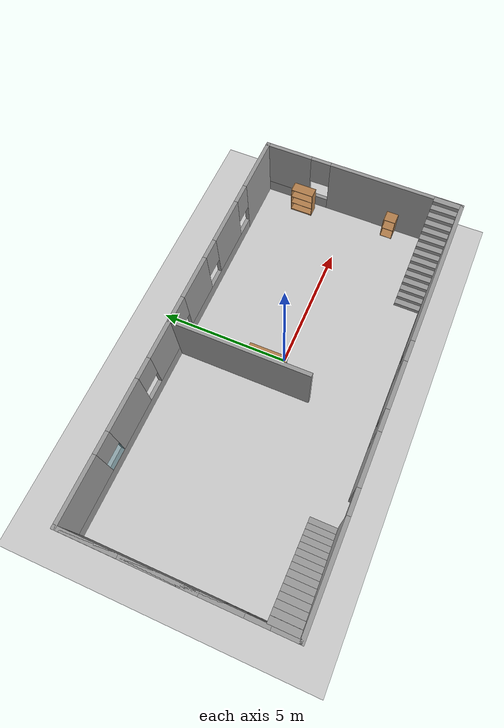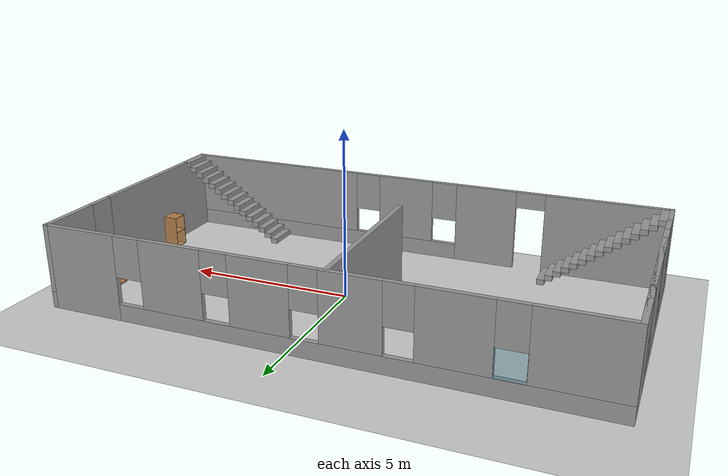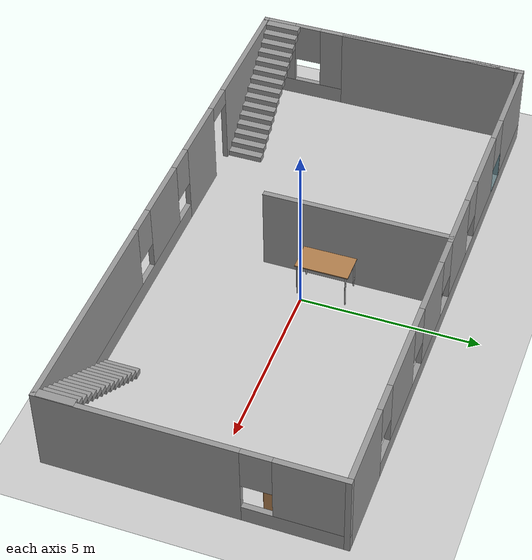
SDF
<sdf version="1.6">
 <world name="default">
  <light name="sun" type="directional">
   <pose>0 0 10 0 -0 0</pose>
   <diffuse>0.8 0.8 0.8 1</diffuse>
   <specular>0.2 0.2 0.2 1</specular>
   <attenuation>
    <range>1000</range>
    <constant>0.9</constant>
    <linear>0.01</linear>
    <quadratic>0.001</quadratic>
   </attenuation>
   <direction>-0.5 0.1 -0.9</direction>
  </light>
  <model name="ground_plane">
   <static>1</static>
   <link name="link">
    <collision name="collision">
     <geometry><plane><normal>0 0 1</normal><size>100 100</size></plane></geometry>
     <surface><friction><ode><mu>100</mu><mu2>50</mu2></ode></friction></surface>
    </collision>
    <visual name="visual">
     <cast_shadows>0</cast_shadows>
     <geometry><plane><normal>0 0 1</normal><size>100 100</size></plane></geometry>
     <material>
      <script><uri>file://media/materials/scripts/gazebo.material</uri><name>Gazebo/Grey</name></script>
     </material>
    </visual>
   </link>
  </model>
  <gravity>0 0 -9.8</gravity>
  <magnetic_field>6e-06 2.3e-05 -4.2e-05</magnetic_field>
  <atmosphere type="adiabatic"/>
  <physics name="default_physics" default="0" type="ode">
   <max_step_size>0.01</max_step_size>
   <real_time_factor>1</real_time_factor>
   <real_time_update_rate>100</real_time_update_rate>
  </physics>
  <scene><ambient>0.4 0.4 0.4 1</ambient><background>0.7 0.7 0.7 1</background><shadows>1</shadows></scene>
  <audio><device>default</device></audio>
  <spherical_coordinates>
   <surface_model>EARTH_WGS84</surface_model>
   <latitude_deg>0</latitude_deg>
   <longitude_deg>0</longitude_deg>
   <elevation>0</elevation>
   <heading_deg>0</heading_deg>
  </spherical_coordinates>
  <model name="Office">
   <pose>-0.605768 -0.165332 0 0 -0 0</pose>
   <link name="Stairs_0">
    <visual name="Stairs_0_Visual_0">
     <pose>-4.48748 -3.33801 0.083333 0 -0 -1.5708</pose>
     <geometry><box><size>1 0.233333 0.166667</size></box></geometry>
     <material>
      <script><uri>file://media/materials/scripts/gazebo.material</uri><name>Gazebo/Grey</name></script>
      <ambient>1 1 1 1</ambient>
     </material>
     <meta><layer>0</layer></meta>
    </visual>
    <collision name="Stairs_0_Collision_0">
     <geometry><box><size>1 0.233333 0.166667</size></box></geometry>
     <pose>-4.48748 -3.33801 0.083333 0 -0 -1.5708</pose>
    </collision>
    <visual name="Stairs_0_Visual_1">
     <pose>-4.72081 -3.33801 0.25 0 -0 -1.5708</pose>
     <geometry><box><size>1 0.233333 0.166667</size></box></geometry>
     <material>
      <script><uri>file://media/materials/scripts/gazebo.material</uri><name>Gazebo/Grey</name></script>
      <ambient>1 1 1 1</ambient>
     </material>
     <meta><layer>0</layer></meta>
    </visual>
    <collision name="Stairs_0_Collision_1">
     <geometry><box><size>1 0.233333 0.166667</size></box></geometry>
     <pose>-4.72081 -3.33801 0.25 0 -0 -1.5708</pose>
    </collision>
    <visual name="Stairs_0_Visual_2">
     <pose>-4.95415 -3.33801 0.416667 0 -0 -1.5708</pose>
     <geometry><box><size>1 0.233333 0.166667</size></box></geometry>
     <material>
      <script><uri>file://media/materials/scripts/gazebo.material</uri><name>Gazebo/Grey</name></script>
      <ambient>1 1 1 1</ambient>
     </material>
     <meta><layer>0</layer></meta>
    </visual>
    <collision name="Stairs_0_Collision_2">
     <geometry><box><size>1 0.233333 0.166667</size></box></geometry>
     <pose>-4.95415 -3.33801 0.416667 0 -0 -1.5708</pose>
    </collision>
    <visual name="Stairs_0_Visual_3">
     <pose>-5.18748 -3.33801 0.583333 0 -0 -1.5708</pose>
     <geometry><box><size>1 0.233333 0.166667</size></box></geometry>
     <material>
      <script><uri>file://media/materials/scripts/gazebo.material</uri><name>Gazebo/Grey</name></script>
      <ambient>1 1 1 1</ambient>
     </material>
     <meta><layer>0</layer></meta>
    </visual>
    <collision name="Stairs_0_Collision_3">
     <geometry><box><size>1 0.233333 0.166667</size></box></geometry>
     <pose>-5.18748 -3.33801 0.583333 0 -0 -1.5708</pose>
    </collision>
    <visual name="Stairs_0_Visual_4">
     <pose>-5.42081 -3.33801 0.75 0 -0 -1.5708</pose>
     <geometry><box><size>1 0.233333 0.166667</size></box></geometry>
     <material>
      <script><uri>file://media/materials/scripts/gazebo.material</uri><name>Gazebo/Grey</name></script>
      <ambient>1 1 1 1</ambient>
     </material>
     <meta><layer>0</layer></meta>
    </visual>
    <collision name="Stairs_0_Collision_4">
     <geometry><box><size>1 0.233333 0.166667</size></box></geometry>
     <pose>-5.42081 -3.33801 0.75 0 -0 -1.5708</pose>
    </collision>
    <visual name="Stairs_0_Visual_5">
     <pose>-5.65415 -3.33801 0.916667 0 -0 -1.5708</pose>
     <geometry><box><size>1 0.233333 0.166667</size></box></geometry>
     <material>
      <script><uri>file://media/materials/scripts/gazebo.material</uri><name>Gazebo/Grey</name></script>
      <ambient>1 1 1 1</ambient>
     </material>
     <meta><layer>0</layer></meta>
    </visual>
    <collision name="Stairs_0_Collision_5">
     <geometry><box><size>1 0.233333 0.166667</size></box></geometry>
     <pose>-5.65415 -3.33801 0.916667 0 -0 -1.5708</pose>
    </collision>
    <visual name="Stairs_0_Visual_6">
     <pose>-5.88748 -3.33801 1.08333 0 -0 -1.5708</pose>
     <geometry><box><size>1 0.233333 0.166667</size></box></geometry>
     <material>
      <script><uri>file://media/materials/scripts/gazebo.material</uri><name>Gazebo/Grey</name></script>
      <ambient>1 1 1 1</ambient>
     </material>
     <meta><layer>0</layer></meta>
    </visual>
    <collision name="Stairs_0_Collision_6">
     <geometry><box><size>1 0.233333 0.166667</size></box></geometry>
     <pose>-5.88748 -3.33801 1.08333 0 -0 -1.5708</pose>
    </collision>
    <visual name="Stairs_0_Visual_7">
     <pose>-6.12081 -3.33801 1.25 0 -0 -1.5708</pose>
     <geometry><box><size>1 0.233333 0.166667</size></box></geometry>
     <material>
      <script><uri>file://media/materials/scripts/gazebo.material</uri><name>Gazebo/Grey</name></script>
      <ambient>1 1 1 1</ambient>
     </material>
     <meta><layer>0</layer></meta>
    </visual>
    <collision name="Stairs_0_Collision_7">
     <geometry><box><size>1 0.233333 0.166667</size></box></geometry>
     <pose>-6.12081 -3.33801 1.25 0 -0 -1.5708</pose>
    </collision>
    <visual name="Stairs_0_Visual_8">
     <pose>-6.35415 -3.33801 1.41667 0 -0 -1.5708</pose>
     <geometry><box><size>1 0.233333 0.166667</size></box></geometry>
     <material>
      <script><uri>file://media/materials/scripts/gazebo.material</uri><name>Gazebo/Grey</name></script>
      <ambient>1 1 1 1</ambient>
     </material>
     <meta><layer>0</layer></meta>
    </visual>
    <collision name="Stairs_0_Collision_8">
     <geometry><box><size>1 0.233333 0.166667</size></box></geometry>
     <pose>-6.35415 -3.33801 1.41667 0 -0 -1.5708</pose>
    </collision>
    <visual name="Stairs_0_Visual_9">
     <pose>-6.58748 -3.33801 1.58333 0 -0 -1.5708</pose>
     <geometry><box><size>1 0.233333 0.166667</size></box></geometry>
     <material>
      <script><uri>file://media/materials/scripts/gazebo.material</uri><name>Gazebo/Grey</name></script>
      <ambient>1 1 1 1</ambient>
     </material>
     <meta><layer>0</layer></meta>
    </visual>
    <collision name="Stairs_0_Collision_9">
     <geometry><box><size>1 0.233333 0.166667</size></box></geometry>
     <pose>-6.58748 -3.33801 1.58333 0 -0 -1.5708</pose>
    </collision>
    <visual name="Stairs_0_Visual_10">
     <pose>-6.82081 -3.33801 1.75 0 -0 -1.5708</pose>
     <geometry><box><size>1 0.233333 0.166667</size></box></geometry>
     <material>
      <script><uri>file://media/materials/scripts/gazebo.material</uri><name>Gazebo/Grey</name></script>
      <ambient>1 1 1 1</ambient>
     </material>
     <meta><layer>0</layer></meta>
    </visual>
    <collision name="Stairs_0_Collision_10">
     <geometry><box><size>1 0.233333 0.166667</size></box></geometry>
     <pose>-6.82081 -3.33801 1.75 0 -0 -1.5708</pose>
    </collision>
    <visual name="Stairs_0_Visual_11">
     <pose>-7.05415 -3.33801 1.91667 0 -0 -1.5708</pose>
     <geometry><box><size>1 0.233333 0.166667</size></box></geometry>
     <material>
      <script><uri>file://media/materials/scripts/gazebo.material</uri><name>Gazebo/Grey</name></script>
      <ambient>1 1 1 1</ambient>
     </material>
     <meta><layer>0</layer></meta>
    </visual>
    <collision name="Stairs_0_Collision_11">
     <geometry><box><size>1 0.233333 0.166667</size></box></geometry>
     <pose>-7.05415 -3.33801 1.91667 0 -0 -1.5708</pose>
    </collision>
    <visual name="Stairs_0_Visual_12">
     <pose>-7.28748 -3.33801 2.08333 0 -0 -1.5708</pose>
     <geometry><box><size>1 0.233333 0.166667</size></box></geometry>
     <material>
      <script><uri>file://media/materials/scripts/gazebo.material</uri><name>Gazebo/Grey</name></script>
      <ambient>1 1 1 1</ambient>
     </material>
     <meta><layer>0</layer></meta>
    </visual>
    <collision name="Stairs_0_Collision_12">
     <geometry><box><size>1 0.233333 0.166667</size></box></geometry>
     <pose>-7.28748 -3.33801 2.08333 0 -0 -1.5708</pose>
    </collision>
    <visual name="Stairs_0_Visual_13">
     <pose>-7.52081 -3.33801 2.25 0 -0 -1.5708</pose>
     <geometry><box><size>1 0.233333 0.166667</size></box></geometry>
     <material>
      <script><uri>file://media/materials/scripts/gazebo.material</uri><name>Gazebo/Grey</name></script>
      <ambient>1 1 1 1</ambient>
     </material>
     <meta><layer>0</layer></meta>
    </visual>
    <collision name="Stairs_0_Collision_13">
     <geometry><box><size>1 0.233333 0.166667</size></box></geometry>
     <pose>-7.52081 -3.33801 2.25 0 -0 -1.5708</pose>
    </collision>
    <visual name="Stairs_0_Visual_14">
     <pose>-7.75415 -3.33801 2.41667 0 -0 -1.5708</pose>
     <geometry><box><size>1 0.233333 0.166667</size></box></geometry>
     <material>
      <script><uri>file://media/materials/scripts/gazebo.material</uri><name>Gazebo/Grey</name></script>
      <ambient>1 1 1 1</ambient>
     </material>
     <meta><layer>0</layer></meta>
    </visual>
    <collision name="Stairs_0_Collision_14">
     <geometry><box><size>1 0.233333 0.166667</size></box></geometry>
     <pose>-7.75415 -3.33801 2.41667 0 -0 -1.5708</pose>
    </collision>
   </link>
   <link name="Stairs_1">
    <visual name="Stairs_1_Visual_0">
     <pose>4.5976 -3.36114 0.083333 0 -0 1.5708</pose>
     <geometry><box><size>1 0.233333 0.166667</size></box></geometry>
     <material>
      <script><uri>file://media/materials/scripts/gazebo.material</uri><name>Gazebo/Grey</name></script>
      <ambient>1 1 1 1</ambient>
     </material>
     <meta><layer>0</layer></meta>
    </visual>
    <collision name="Stairs_1_Collision_0">
     <geometry><box><size>1 0.233333 0.166667</size></box></geometry>
     <pose>4.5976 -3.36114 0.083333 0 -0 1.5708</pose>
    </collision>
    <visual name="Stairs_1_Visual_1">
     <pose>4.83093 -3.36114 0.25 0 -0 1.5708</pose>
     <geometry><box><size>1 0.233333 0.166667</size></box></geometry>
     <material>
      <script><uri>file://media/materials/scripts/gazebo.material</uri><name>Gazebo/Grey</name></script>
      <ambient>1 1 1 1</ambient>
     </material>
     <meta><layer>0</layer></meta>
    </visual>
    <collision name="Stairs_1_Collision_1">
     <geometry><box><size>1 0.233333 0.166667</size></box></geometry>
     <pose>4.83093 -3.36114 0.25 0 -0 1.5708</pose>
    </collision>
    <visual name="Stairs_1_Visual_2">
     <pose>5.06426 -3.36114 0.416667 0 -0 1.5708</pose>
     <geometry><box><size>1 0.233333 0.166667</size></box></geometry>
     <material>
      <script><uri>file://media/materials/scripts/gazebo.material</uri><name>Gazebo/Grey</name></script>
      <ambient>1 1 1 1</ambient>
     </material>
     <meta><layer>0</layer></meta>
    </visual>
    <collision name="Stairs_1_Collision_2">
     <geometry><box><size>1 0.233333 0.166667</size></box></geometry>
     <pose>5.06426 -3.36114 0.416667 0 -0 1.5708</pose>
    </collision>
    <visual name="Stairs_1_Visual_3">
     <pose>5.2976 -3.36114 0.583333 0 -0 1.5708</pose>
     <geometry><box><size>1 0.233333 0.166667</size></box></geometry>
     <material>
      <script><uri>file://media/materials/scripts/gazebo.material</uri><name>Gazebo/Grey</name></script>
      <ambient>1 1 1 1</ambient>
     </material>
     <meta><layer>0</layer></meta>
    </visual>
    <collision name="Stairs_1_Collision_3">
     <geometry><box><size>1 0.233333 0.166667</size></box></geometry>
     <pose>5.2976 -3.36114 0.583333 0 -0 1.5708</pose>
    </collision>
    <visual name="Stairs_1_Visual_4">
     <pose>5.53093 -3.36114 0.75 0 -0 1.5708</pose>
     <geometry><box><size>1 0.233333 0.166667</size></box></geometry>
     <material>
      <script><uri>file://media/materials/scripts/gazebo.material</uri><name>Gazebo/Grey</name></script>
      <ambient>1 1 1 1</ambient>
     </material>
     <meta><layer>0</layer></meta>
    </visual>
    <collision name="Stairs_1_Collision_4">
     <geometry><box><size>1 0.233333 0.166667</size></box></geometry>
     <pose>5.53093 -3.36114 0.75 0 -0 1.5708</pose>
    </collision>
    <visual name="Stairs_1_Visual_5">
     <pose>5.76426 -3.36114 0.916667 0 -0 1.5708</pose>
     <geometry><box><size>1 0.233333 0.166667</size></box></geometry>
     <material>
      <script><uri>file://media/materials/scripts/gazebo.material</uri><name>Gazebo/Grey</name></script>
      <ambient>1 1 1 1</ambient>
     </material>
     <meta><layer>0</layer></meta>
    </visual>
    <collision name="Stairs_1_Collision_5">
     <geometry><box><size>1 0.233333 0.166667</size></box></geometry>
     <pose>5.76426 -3.36114 0.916667 0 -0 1.5708</pose>
    </collision>
    <visual name="Stairs_1_Visual_6">
     <pose>5.9976 -3.36114 1.08333 0 -0 1.5708</pose>
     <geometry><box><size>1 0.233333 0.166667</size></box></geometry>
     <material>
      <script><uri>file://media/materials/scripts/gazebo.material</uri><name>Gazebo/Grey</name></script>
      <ambient>1 1 1 1</ambient>
     </material>
     <meta><layer>0</layer></meta>
    </visual>
    <collision name="Stairs_1_Collision_6">
     <geometry><box><size>1 0.233333 0.166667</size></box></geometry>
     <pose>5.9976 -3.36114 1.08333 0 -0 1.5708</pose>
    </collision>
    <visual name="Stairs_1_Visual_7">
     <pose>6.23093 -3.36114 1.25 0 -0 1.5708</pose>
     <geometry><box><size>1 0.233333 0.166667</size></box></geometry>
     <material>
      <script><uri>file://media/materials/scripts/gazebo.material</uri><name>Gazebo/Grey</name></script>
      <ambient>1 1 1 1</ambient>
     </material>
     <meta><layer>0</layer></meta>
    </visual>
    <collision name="Stairs_1_Collision_7">
     <geometry><box><size>1 0.233333 0.166667</size></box></geometry>
     <pose>6.23093 -3.36114 1.25 0 -0 1.5708</pose>
    </collision>
    <visual name="Stairs_1_Visual_8">
     <pose>6.46427 -3.36114 1.41667 0 -0 1.5708</pose>
     <geometry><box><size>1 0.233333 0.166667</size></box></geometry>
     <material>
      <script><uri>file://media/materials/scripts/gazebo.material</uri><name>Gazebo/Grey</name></script>
      <ambient>1 1 1 1</ambient>
     </material>
     <meta><layer>0</layer></meta>
    </visual>
    <collision name="Stairs_1_Collision_8">
     <geometry><box><size>1 0.233333 0.166667</size></box></geometry>
     <pose>6.46427 -3.36114 1.41667 0 -0 1.5708</pose>
    </collision>
    <visual name="Stairs_1_Visual_9">
     <pose>6.6976 -3.36114 1.58333 0 -0 1.5708</pose>
     <geometry><box><size>1 0.233333 0.166667</size></box></geometry>
     <material>
      <script><uri>file://media/materials/scripts/gazebo.material</uri><name>Gazebo/Grey</name></script>
      <ambient>1 1 1 1</ambient>
     </material>
     <meta><layer>0</layer></meta>
    </visual>
    <collision name="Stairs_1_Collision_9">
     <geometry><box><size>1 0.233333 0.166667</size></box></geometry>
     <pose>6.6976 -3.36114 1.58333 0 -0 1.5708</pose>
    </collision>
    <visual name="Stairs_1_Visual_10">
     <pose>6.93093 -3.36114 1.75 0 -0 1.5708</pose>
     <geometry><box><size>1 0.233333 0.166667</size></box></geometry>
     <material>
      <script><uri>file://media/materials/scripts/gazebo.material</uri><name>Gazebo/Grey</name></script>
      <ambient>1 1 1 1</ambient>
     </material>
     <meta><layer>0</layer></meta>
    </visual>
    <collision name="Stairs_1_Collision_10">
     <geometry><box><size>1 0.233333 0.166667</size></box></geometry>
     <pose>6.93093 -3.36114 1.75 0 -0 1.5708</pose>
    </collision>
    <visual name="Stairs_1_Visual_11">
     <pose>7.16427 -3.36114 1.91667 0 -0 1.5708</pose>
     <geometry><box><size>1 0.233333 0.166667</size></box></geometry>
     <material>
      <script><uri>file://media/materials/scripts/gazebo.material</uri><name>Gazebo/Grey</name></script>
      <ambient>1 1 1 1</ambient>
     </material>
     <meta><layer>0</layer></meta>
    </visual>
    <collision name="Stairs_1_Collision_11">
     <geometry><box><size>1 0.233333 0.166667</size></box></geometry>
     <pose>7.16427 -3.36114 1.91667 0 -0 1.5708</pose>
    </collision>
    <visual name="Stairs_1_Visual_12">
     <pose>7.3976 -3.36114 2.08333 0 -0 1.5708</pose>
     <geometry><box><size>1 0.233333 0.166667</size></box></geometry>
     <material>
      <script><uri>file://media/materials/scripts/gazebo.material</uri><name>Gazebo/Grey</name></script>
      <ambient>1 1 1 1</ambient>
     </material>
     <meta><layer>0</layer></meta>
    </visual>
    <collision name="Stairs_1_Collision_12">
     <geometry><box><size>1 0.233333 0.166667</size></box></geometry>
     <pose>7.3976 -3.36114 2.08333 0 -0 1.5708</pose>
    </collision>
    <visual name="Stairs_1_Visual_13">
     <pose>7.63093 -3.36114 2.25 0 -0 1.5708</pose>
     <geometry><box><size>1 0.233333 0.166667</size></box></geometry>
     <material>
      <script><uri>file://media/materials/scripts/gazebo.material</uri><name>Gazebo/Grey</name></script>
      <ambient>1 1 1 1</ambient>
     </material>
     <meta><layer>0</layer></meta>
    </visual>
    <collision name="Stairs_1_Collision_13">
     <geometry><box><size>1 0.233333 0.166667</size></box></geometry>
     <pose>7.63093 -3.36114 2.25 0 -0 1.5708</pose>
    </collision>
    <visual name="Stairs_1_Visual_14">
     <pose>7.86426 -3.36114 2.41667 0 -0 1.5708</pose>
     <geometry><box><size>1 0.233333 0.166667</size></box></geometry>
     <material>
      <script><uri>file://media/materials/scripts/gazebo.material</uri><name>Gazebo/Grey</name></script>
      <ambient>1 1 1 1</ambient>
     </material>
     <meta><layer>0</layer></meta>
    </visual>
    <collision name="Stairs_1_Collision_14">
     <geometry><box><size>1 0.233333 0.166667</size></box></geometry>
     <pose>7.86426 -3.36114 2.41667 0 -0 1.5708</pose>
    </collision>
   </link>
   <link name="Wall_2">
    <pose>-7.925 0 0 0 -0 -1.5708</pose>
    <visual name="Wall_2_Visual_0">
     <pose>-3.30667 0 1.25 0 -0 0</pose>
     <geometry><box><size>1.38667 0.15 2.5</size></box></geometry>
     <material>
      <script><uri>file://media/materials/scripts/gazebo.material</uri><name>Gazebo/Grey</name></script>
      <ambient>1 1 1 1</ambient>
     </material>
     <meta><layer>0</layer></meta>
    </visual>
    <collision name="Wall_2_Collision_0">
     <geometry><box><size>1.38667 0.15 2.5</size></box></geometry>
     <pose>-3.30667 0 1.25 0 -0 0</pose>
    </collision>
    <visual name="Wall_2_Visual_1">
     <pose>0.693332 0 0.25 0 -0 0</pose>
     <geometry><box><size>6.61334 0.15 0.5</size></box></geometry>
     <material>
      <script><uri>file://media/materials/scripts/gazebo.material</uri><name>Gazebo/Grey</name></script>
      <ambient>1 1 1 1</ambient>
     </material>
     <meta><layer>0</layer></meta>
    </visual>
    <collision name="Wall_2_Collision_1">
     <geometry><box><size>6.61334 0.15 0.5</size></box></geometry>
     <pose>0.693332 0 0.25 0 -0 0</pose>
    </collision>
    <visual name="Wall_2_Visual_2">
     <pose>-0.918021 0 1.5 0 -0 0</pose>
     <geometry><box><size>1.79063 0.15 2</size></box></geometry>
     <material>
      <script><uri>file://media/materials/scripts/gazebo.material</uri><name>Gazebo/Grey</name></script>
      <ambient>1 1 1 1</ambient>
     </material>
     <meta><layer>0</layer></meta>
    </visual>
    <collision name="Wall_2_Collision_2">
     <geometry><box><size>1.79063 0.15 2</size></box></geometry>
     <pose>-0.918021 0 1.5 0 -0 0</pose>
    </collision>
    <visual name="Wall_2_Visual_3">
     <pose>1.48756 0 1.5 0 -0 0</pose>
     <geometry><box><size>1.42054 0.15 2</size></box></geometry>
     <material>
      <script><uri>file://media/materials/scripts/gazebo.material</uri><name>Gazebo/Grey</name></script>
      <ambient>1 1 1 1</ambient>
     </material>
     <meta><layer>0</layer></meta>
    </visual>
    <collision name="Wall_2_Collision_3">
     <geometry><box><size>1.42054 0.15 2</size></box></geometry>
     <pose>1.48756 0 1.5 0 -0 0</pose>
    </collision>
    <visual name="Wall_2_Visual_4">
     <pose>3.49892 0 1.5 0 -0 0</pose>
     <geometry><box><size>1.00217 0.15 2</size></box></geometry>
     <material>
      <script><uri>file://media/materials/scripts/gazebo.material</uri><name>Gazebo/Grey</name></script>
      <ambient>1 1 1 1</ambient>
     </material>
     <meta><layer>0</layer></meta>
    </visual>
    <collision name="Wall_2_Collision_4">
     <geometry><box><size>1.00217 0.15 2</size></box></geometry>
     <pose>3.49892 0 1.5 0 -0 0</pose>
    </collision>
    <visual name="Wall_2_Visual_5">
     <pose>-2.21333 0 1.9 0 -0 0</pose>
     <geometry><box><size>0.8 0.15 1.2</size></box></geometry>
     <material>
      <script><uri>file://media/materials/scripts/gazebo.material</uri><name>Gazebo/Grey</name></script>
      <ambient>1 1 1 1</ambient>
     </material>
     <meta><layer>0</layer></meta>
    </visual>
    <collision name="Wall_2_Collision_5">
     <geometry><box><size>0.8 0.15 1.2</size></box></geometry>
     <pose>-2.21333 0 1.9 0 -0 0</pose>
    </collision>
    <visual name="Wall_2_Visual_6">
     <pose>0.377293 0 1.9 0 -0 0</pose>
     <geometry><box><size>0.8 0.15 1.2</size></box></geometry>
     <material>
      <script><uri>file://media/materials/scripts/gazebo.material</uri><name>Gazebo/Grey</name></script>
      <ambient>1 1 1 1</ambient>
     </material>
     <meta><layer>0</layer></meta>
    </visual>
    <collision name="Wall_2_Collision_6">
     <geometry><box><size>0.8 0.15 1.2</size></box></geometry>
     <pose>0.377293 0 1.9 0 -0 0</pose>
    </collision>
    <visual name="Wall_2_Visual_7">
     <pose>2.59783 0 1.9 0 -0 0</pose>
     <geometry><box><size>0.8 0.15 1.2</size></box></geometry>
     <material>
      <script><uri>file://media/materials/scripts/gazebo.material</uri><name>Gazebo/Grey</name></script>
      <ambient>1 1 1 1</ambient>
     </material>
     <meta><layer>0</layer></meta>
    </visual>
    <collision name="Wall_2_Collision_7">
     <geometry><box><size>0.8 0.15 1.2</size></box></geometry>
     <pose>2.59783 0 1.9 0 -0 0</pose>
    </collision>
   </link>
   <link name="Wall_7">
    <pose>-0 -3.925 0 0 -0 0</pose>
    <visual name="Wall_7_Visual_0">
     <pose>-6.14044 0 1.25 0 -0 0</pose>
     <geometry><box><size>3.71912 0.15 2.5</size></box></geometry>
     <material>
      <script><uri>file://media/materials/scripts/gazebo.material</uri><name>Gazebo/Grey</name></script>
      <ambient>1 1 1 1</ambient>
     </material>
     <meta><layer>0</layer></meta>
    </visual>
    <collision name="Wall_7_Collision_0">
     <geometry><box><size>3.71912 0.15 2.5</size></box></geometry>
     <pose>-6.14044 0 1.25 0 -0 0</pose>
    </collision>
    <visual name="Wall_7_Visual_1">
     <pose>-2.42961 0 1.25 0 -0 0</pose>
     <geometry><box><size>1.90254 0.15 2.5</size></box></geometry>
     <material>
      <script><uri>file://media/materials/scripts/gazebo.material</uri><name>Gazebo/Grey</name></script>
      <ambient>1 1 1 1</ambient>
     </material>
     <meta><layer>0</layer></meta>
    </visual>
    <collision name="Wall_7_Collision_1">
     <geometry><box><size>1.90254 0.15 2.5</size></box></geometry>
     <pose>-2.42961 0 1.25 0 -0 0</pose>
    </collision>
    <visual name="Wall_7_Visual_2">
     <pose>3.26083 0 0.25 0 -0 0</pose>
     <geometry><box><size>9.47834 0.15 0.5</size></box></geometry>
     <material>
      <script><uri>file://media/materials/scripts/gazebo.material</uri><name>Gazebo/Grey</name></script>
      <ambient>1 1 1 1</ambient>
     </material>
     <meta><layer>0</layer></meta>
    </visual>
    <collision name="Wall_7_Collision_2">
     <geometry><box><size>9.47834 0.15 0.5</size></box></geometry>
     <pose>3.26083 0 0.25 0 -0 0</pose>
    </collision>
    <visual name="Wall_7_Visual_3">
     <pose>0.228539 0 1.5 0 -0 0</pose>
     <geometry><box><size>1.81376 0.15 2</size></box></geometry>
     <material>
      <script><uri>file://media/materials/scripts/gazebo.material</uri><name>Gazebo/Grey</name></script>
      <ambient>1 1 1 1</ambient>
     </material>
     <meta><layer>0</layer></meta>
    </visual>
    <collision name="Wall_7_Collision_3">
     <geometry><box><size>1.81376 0.15 2</size></box></geometry>
     <pose>0.228539 0 1.5 0 -0 0</pose>
    </collision>
    <visual name="Wall_7_Visual_4">
     <pose>4.96771 0 1.5 0 -0 0</pose>
     <geometry><box><size>6.06458 0.15 2</size></box></geometry>
     <material>
      <script><uri>file://media/materials/scripts/gazebo.material</uri><name>Gazebo/Grey</name></script>
      <ambient>1 1 1 1</ambient>
     </material>
     <meta><layer>0</layer></meta>
    </visual>
    <collision name="Wall_7_Collision_4">
     <geometry><box><size>6.06458 0.15 2</size></box></geometry>
     <pose>4.96771 0 1.5 0 -0 0</pose>
    </collision>
    <visual name="Wall_7_Visual_5">
     <pose>-1.07834 0 1.9 0 -0 0</pose>
     <geometry><box><size>0.8 0.15 1.2</size></box></geometry>
     <material>
      <script><uri>file://media/materials/scripts/gazebo.material</uri><name>Gazebo/Grey</name></script>
      <ambient>1 1 1 1</ambient>
     </material>
     <meta><layer>0</layer></meta>
    </visual>
    <collision name="Wall_7_Collision_5">
     <geometry><box><size>0.8 0.15 1.2</size></box></geometry>
     <pose>-1.07834 0 1.9 0 -0 0</pose>
    </collision>
    <visual name="Wall_7_Visual_6">
     <pose>1.53542 0 1.9 0 -0 0</pose>
     <geometry><box><size>0.8 0.15 1.2</size></box></geometry>
     <material>
      <script><uri>file://media/materials/scripts/gazebo.material</uri><name>Gazebo/Grey</name></script>
      <ambient>1 1 1 1</ambient>
     </material>
     <meta><layer>0</layer></meta>
    </visual>
    <collision name="Wall_7_Collision_6">
     <geometry><box><size>0.8 0.15 1.2</size></box></geometry>
     <pose>1.53542 0 1.9 0 -0 0</pose>
    </collision>
    <visual name="Wall_7_Visual_7">
     <pose>-3.83088 0 2.25 0 -0 0</pose>
     <geometry><box><size>0.9 0.15 0.5</size></box></geometry>
     <material>
      <script><uri>file://media/materials/scripts/gazebo.material</uri><name>Gazebo/Grey</name></script>
      <ambient>1 1 1 1</ambient>
     </material>
     <meta><layer>0</layer></meta>
    </visual>
    <collision name="Wall_7_Collision_7">
     <geometry><box><size>0.9 0.15 0.5</size></box></geometry>
     <pose>-3.83088 0 2.25 0 -0 0</pose>
    </collision>
   </link>
   <link name="Wall_8">
    <pose>7.925 0 0 0 -0 1.5708</pose>
    <visual name="Wall_8_Visual_0">
     <pose>-1.35933 0 1.25 0 -0 0</pose>
     <geometry><box><size>5.28133 0.15 2.5</size></box></geometry>
     <material>
      <script><uri>file://media/materials/scripts/gazebo.material</uri><name>Gazebo/Grey</name></script>
      <ambient>1 1 1 1</ambient>
     </material>
     <meta><layer>0</layer></meta>
    </visual>
    <collision name="Wall_8_Collision_0">
     <geometry><box><size>5.28133 0.15 2.5</size></box></geometry>
     <pose>-1.35933 0 1.25 0 -0 0</pose>
    </collision>
    <visual name="Wall_8_Visual_1">
     <pose>2.64067 0 0.25 0 -0 0</pose>
     <geometry><box><size>2.71867 0.15 0.5</size></box></geometry>
     <material>
      <script><uri>file://media/materials/scripts/gazebo.material</uri><name>Gazebo/Grey</name></script>
      <ambient>1 1 1 1</ambient>
     </material>
     <meta><layer>0</layer></meta>
    </visual>
    <collision name="Wall_8_Collision_1">
     <geometry><box><size>2.71867 0.15 0.5</size></box></geometry>
     <pose>2.64067 0 0.25 0 -0 0</pose>
    </collision>
    <visual name="Wall_8_Visual_2">
     <pose>3.04067 0 1.5 0 -0 0</pose>
     <geometry><box><size>1.91867 0.15 2</size></box></geometry>
     <material>
      <script><uri>file://media/materials/scripts/gazebo.material</uri><name>Gazebo/Grey</name></script>
      <ambient>1 1 1 1</ambient>
     </material>
     <meta><layer>0</layer></meta>
    </visual>
    <collision name="Wall_8_Collision_2">
     <geometry><box><size>1.91867 0.15 2</size></box></geometry>
     <pose>3.04067 0 1.5 0 -0 0</pose>
    </collision>
    <visual name="Wall_8_Visual_3">
     <pose>1.68133 0 1.9 0 -0 0</pose>
     <geometry><box><size>0.8 0.15 1.2</size></box></geometry>
     <material>
      <script><uri>file://media/materials/scripts/gazebo.material</uri><name>Gazebo/Grey</name></script>
      <ambient>1 1 1 1</ambient>
     </material>
     <meta><layer>0</layer></meta>
    </visual>
    <collision name="Wall_8_Collision_3">
     <geometry><box><size>0.8 0.15 1.2</size></box></geometry>
     <pose>1.68133 0 1.9 0 -0 0</pose>
    </collision>
   </link>
   <link name="Wall_9">
    <pose>-0 3.925 0 0 -0 3.14159</pose>
    <visual name="Wall_9_Visual_0">
     <pose>-6.84129 0 1.25 0 -0 0</pose>
     <geometry><box><size>2.31742 0.15 2.5</size></box></geometry>
     <material>
      <script><uri>file://media/materials/scripts/gazebo.material</uri><name>Gazebo/Grey</name></script>
      <ambient>1 1 1 1</ambient>
     </material>
     <meta><layer>0</layer></meta>
    </visual>
    <collision name="Wall_9_Collision_0">
     <geometry><box><size>2.31742 0.15 2.5</size></box></geometry>
     <pose>-6.84129 0 1.25 0 -0 0</pose>
    </collision>
    <visual name="Wall_9_Visual_1">
     <pose>1.15871 0 0.25 0 -0 0</pose>
     <geometry><box><size>13.6826 0.15 0.5</size></box></geometry>
     <material>
      <script><uri>file://media/materials/scripts/gazebo.material</uri><name>Gazebo/Grey</name></script>
      <ambient>1 1 1 1</ambient>
     </material>
     <meta><layer>0</layer></meta>
    </visual>
    <collision name="Wall_9_Collision_1">
     <geometry><box><size>13.6826 0.15 0.5</size></box></geometry>
     <pose>1.15871 0 0.25 0 -0 0</pose>
    </collision>
    <visual name="Wall_9_Visual_2">
     <pose>-3.941 0 1.5 0 -0 0</pose>
     <geometry><box><size>1.88315 0.15 2</size></box></geometry>
     <material>
      <script><uri>file://media/materials/scripts/gazebo.material</uri><name>Gazebo/Grey</name></script>
      <ambient>1 1 1 1</ambient>
     </material>
     <meta><layer>0</layer></meta>
    </visual>
    <collision name="Wall_9_Collision_2">
     <geometry><box><size>1.88315 0.15 2</size></box></geometry>
     <pose>-3.941 0 1.5 0 -0 0</pose>
    </collision>
    <visual name="Wall_9_Visual_3">
     <pose>-1.32724 0 1.5 0 -0 0</pose>
     <geometry><box><size>1.74437 0.15 2</size></box></geometry>
     <material>
      <script><uri>file://media/materials/scripts/gazebo.material</uri><name>Gazebo/Grey</name></script>
      <ambient>1 1 1 1</ambient>
     </material>
     <meta><layer>0</layer></meta>
    </visual>
    <collision name="Wall_9_Collision_3">
     <geometry><box><size>1.74437 0.15 2</size></box></geometry>
     <pose>-1.32724 0 1.5 0 -0 0</pose>
    </collision>
    <visual name="Wall_9_Visual_4">
     <pose>1.19399 0 1.5 0 -0 0</pose>
     <geometry><box><size>1.69811 0.15 2</size></box></geometry>
     <material>
      <script><uri>file://media/materials/scripts/gazebo.material</uri><name>Gazebo/Grey</name></script>
      <ambient>1 1 1 1</ambient>
     </material>
     <meta><layer>0</layer></meta>
    </visual>
    <collision name="Wall_9_Collision_4">
     <geometry><box><size>1.69811 0.15 2</size></box></geometry>
     <pose>1.19399 0 1.5 0 -0 0</pose>
    </collision>
    <visual name="Wall_9_Visual_5">
     <pose>3.80775 0 1.5 0 -0 0</pose>
     <geometry><box><size>1.92941 0.15 2</size></box></geometry>
     <material>
      <script><uri>file://media/materials/scripts/gazebo.material</uri><name>Gazebo/Grey</name></script>
      <ambient>1 1 1 1</ambient>
     </material>
     <meta><layer>0</layer></meta>
    </visual>
    <collision name="Wall_9_Collision_5">
     <geometry><box><size>1.92941 0.15 2</size></box></geometry>
     <pose>3.80775 0 1.5 0 -0 0</pose>
    </collision>
    <visual name="Wall_9_Visual_6">
     <pose>6.78623 0 1.5 0 -0 0</pose>
     <geometry><box><size>2.42754 0.15 2</size></box></geometry>
     <material>
      <script><uri>file://media/materials/scripts/gazebo.material</uri><name>Gazebo/Grey</name></script>
      <ambient>1 1 1 1</ambient>
     </material>
     <meta><layer>0</layer></meta>
    </visual>
    <collision name="Wall_9_Collision_6">
     <geometry><box><size>2.42754 0.15 2</size></box></geometry>
     <pose>6.78623 0 1.5 0 -0 0</pose>
    </collision>
    <visual name="Wall_9_Visual_7">
     <pose>-5.28258 0 1.9 0 -0 0</pose>
     <geometry><box><size>0.8 0.15 1.2</size></box></geometry>
     <material>
      <script><uri>file://media/materials/scripts/gazebo.material</uri><name>Gazebo/Grey</name></script>
      <ambient>1 1 1 1</ambient>
     </material>
     <meta><layer>0</layer></meta>
    </visual>
    <collision name="Wall_9_Collision_7">
     <geometry><box><size>0.8 0.15 1.2</size></box></geometry>
     <pose>-5.28258 0 1.9 0 -0 0</pose>
    </collision>
    <visual name="Wall_9_Visual_8">
     <pose>-2.59943 0 1.9 0 -0 0</pose>
     <geometry><box><size>0.8 0.15 1.2</size></box></geometry>
     <material>
      <script><uri>file://media/materials/scripts/gazebo.material</uri><name>Gazebo/Grey</name></script>
      <ambient>1 1 1 1</ambient>
     </material>
     <meta><layer>0</layer></meta>
    </visual>
    <collision name="Wall_9_Collision_8">
     <geometry><box><size>0.8 0.15 1.2</size></box></geometry>
     <pose>-2.59943 0 1.9 0 -0 0</pose>
    </collision>
    <visual name="Wall_9_Visual_9">
     <pose>-0.05506 0 1.9 0 -0 0</pose>
     <geometry><box><size>0.8 0.15 1.2</size></box></geometry>
     <material>
      <script><uri>file://media/materials/scripts/gazebo.material</uri><name>Gazebo/Grey</name></script>
      <ambient>1 1 1 1</ambient>
     </material>
     <meta><layer>0</layer></meta>
    </visual>
    <collision name="Wall_9_Collision_9">
     <geometry><box><size>0.8 0.15 1.2</size></box></geometry>
     <pose>-0.05506 0 1.9 0 -0 0</pose>
    </collision>
    <visual name="Wall_9_Visual_10">
     <pose>2.44305 0 1.9 0 -0 0</pose>
     <geometry><box><size>0.8 0.15 1.2</size></box></geometry>
     <material>
      <script><uri>file://media/materials/scripts/gazebo.material</uri><name>Gazebo/Grey</name></script>
      <ambient>1 1 1 1</ambient>
     </material>
     <meta><layer>0</layer></meta>
    </visual>
    <collision name="Wall_9_Collision_10">
     <geometry><box><size>0.8 0.15 1.2</size></box></geometry>
     <pose>2.44305 0 1.9 0 -0 0</pose>
    </collision>
    <visual name="Wall_9_Visual_11">
     <pose>5.17246 0 1.9 0 -0 0</pose>
     <geometry><box><size>0.8 0.15 1.2</size></box></geometry>
     <material>
      <script><uri>file://media/materials/scripts/gazebo.material</uri><name>Gazebo/Grey</name></script>
      <ambient>1 1 1 1</ambient>
     </material>
     <meta><layer>0</layer></meta>
    </visual>
    <collision name="Wall_9_Collision_11">
     <geometry><box><size>0.8 0.15 1.2</size></box></geometry>
     <pose>5.17246 0 1.9 0 -0 0</pose>
    </collision>
   </link>
   <static>1</static>
  </model>
  <model name="Untitled">
   <pose>-1.13443 1.17428 0 0 -0 0</pose>
   <link name="Wall_1">
    <collision name="Wall_1_Collision">
     <geometry><box><size>5.25 0.15 2.5</size></box></geometry>
     <pose>0 0 1.25 0 -0 0</pose>
    </collision>
    <visual name="Wall_1_Visual">
     <pose>0 0 1.25 0 -0 0</pose>
     <geometry><box><size>5.25 0.15 2.5</size></box></geometry>
     <material>
      <script><uri>file://media/materials/scripts/gazebo.material</uri><name>Gazebo/Grey</name></script>
      <ambient>1 1 1 1</ambient>
     </material>
     <meta><layer>0</layer></meta>
    </visual>
    <pose>0 -0 0 0 -0 1.5708</pose>
   </link>
   <static>1</static>
  </model>
  <model name="Untitled_0">
   <pose>-8.52719 0.948443 0 0 -0 0</pose>
   <link name="Wall_1">
    <collision name="Wall_1_Collision">
     <geometry><box><size>5.25 0.15 2.5</size></box></geometry>
     <pose>0 0 1.25 0 -0 0</pose>
    </collision>
    <visual name="Wall_1_Visual">
     <pose>0 0 1.25 0 -0 0</pose>
     <geometry><box><size>5.25 0.15 2.5</size></box></geometry>
     <material>
      <script><uri>file://media/materials/scripts/gazebo.material</uri><name>Gazebo/Grey</name></script>
      <ambient>1 1 1 1</ambient>
     </material>
     <meta><layer>0</layer></meta>
    </visual>
    <pose>0 -0 0 0 -0 1.5708</pose>
   </link>
   <static>1</static>
  </model>
  <model name="window">
   <link name="link_2">
    <visual name="visual">
     <pose>0 0 0.9 0 -0 0</pose>
     <geometry><box><size>0.8 0.15 0.8</size></box></geometry>
     <material>
      <lighting>1</lighting>
      <ambient>0.1 0.5 0.6 1</ambient>
      <diffuse>0.1 0.5 0.6 1</diffuse>
      <specular>0.01 0.01 0.01 1</specular>
      <emissive>0 0 0 1</emissive>
     </material>
     <transparency>0.7</transparency>
    </visual>
    <collision name="collision">
     <pose>0 0 0.9 0 -0 0</pose>
     <geometry><box><size>0.8 0.15 0.8</size></box></geometry>
    </collision>
   </link>
   <static>1</static>
   <pose>-5.78425 3.76861 0 0 -0 0</pose>
  </model>
  <model name="table">
   <static>1</static>
   <link name="link">
    <collision name="surface">
     <pose>0 0 1 0 -0 0</pose>
     <geometry><box><size>1.5 0.8 0.03</size></box></geometry>
     <surface><friction><ode><mu>0.6</mu><mu2>0.6</mu2></ode></friction></surface>
    </collision>
    <visual name="visual1">
     <pose>0 0 1 0 -0 0</pose>
     <geometry><box><size>1.5 0.8 0.03</size></box></geometry>
     <material>
      <script><uri>file://media/materials/scripts/gazebo.material</uri><name>Gazebo/Wood</name></script>
     </material>
    </visual>
    <collision name="front_left_leg">
     <pose>0.68 0.38 0.5 0 -0 0</pose>
     <geometry><cylinder><radius>0.02</radius><length>1</length></cylinder></geometry>
    </collision>
    <visual name="front_left_leg">
     <pose>0.68 0.38 0.5 0 -0 0</pose>
     <geometry><cylinder><radius>0.02</radius><length>1</length></cylinder></geometry>
     <material>
      <script><uri>file://media/materials/scripts/gazebo.material</uri><name>Gazebo/Grey</name></script>
     </material>
    </visual>
    <collision name="front_right_leg">
     <pose>0.68 -0.38 0.5 0 -0 0</pose>
     <geometry><cylinder><radius>0.02</radius><length>1</length></cylinder></geometry>
    </collision>
    <visual name="front_right_leg">
     <pose>0.68 -0.38 0.5 0 -0 0</pose>
     <geometry><cylinder><radius>0.02</radius><length>1</length></cylinder></geometry>
     <material>
      <script><uri>file://media/materials/scripts/gazebo.material</uri><name>Gazebo/Grey</name></script>
     </material>
    </visual>
    <collision name="back_right_leg">
     <pose>-0.68 -0.38 0.5 0 -0 0</pose>
     <geometry><cylinder><radius>0.02</radius><length>1</length></cylinder></geometry>
    </collision>
    <visual name="back_right_leg">
     <pose>-0.68 -0.38 0.5 0 -0 0</pose>
     <geometry><cylinder><radius>0.02</radius><length>1</length></cylinder></geometry>
     <material>
      <script><uri>file://media/materials/scripts/gazebo.material</uri><name>Gazebo/Grey</name></script>
     </material>
    </visual>
    <collision name="back_left_leg">
     <pose>-0.68 0.38 0.5 0 -0 0</pose>
     <geometry><cylinder><radius>0.02</radius><length>1</length></cylinder></geometry>
    </collision>
    <visual name="back_left_leg">
     <pose>-0.68 0.38 0.5 0 -0 0</pose>
     <geometry><cylinder><radius>0.02</radius><length>1</length></cylinder></geometry>
     <material>
      <script><uri>file://media/materials/scripts/gazebo.material</uri><name>Gazebo/Grey</name></script>
     </material>
    </visual>
   </link>
   <pose>-0.616113 0.497841 0 0 0 -1.5708</pose>
  </model>
  <model name="cabinet">
   <static>1</static>
   <link name="cabinet_bottom_plate">
    <inertial>
     <pose>0 0 -1 0 -0 0</pose>
     <inertia><ixx>2.05</ixx><ixy>0</ixy><ixz>0</ixz><iyy>2.05</iyy><iyz>0</iyz><izz>2.05</izz></inertia>
     <mass>25</mass>
    </inertial>
    <collision name="cabinet_bottom_plate_geom">
     <pose>0 0 0.01 0 -0 0</pose>
     <geometry><box><size>0.45 0.45 0.02</size></box></geometry>
    </collision>
    <visual name="cabinet_bottom_plate_geom_visual">
     <pose>0 0 0.01 0 -0 0</pose>
     <geometry><box><size>0.45 0.45 0.02</size></box></geometry>
     <material>
      <script><uri>file://media/materials/scripts/gazebo.material</uri><name>Gazebo/Wood</name></script>
     </material>
    </visual>
    <collision name="cabinet_bottom_plate_geom_cabinet_back_plate">
     <pose>0.235 0 0.51 0 -0 0</pose>
     <geometry><box><size>0.02 0.45 1.02</size></box></geometry>
    </collision>
    <visual name="cabinet_bottom_plate_geom_cabinet_back_plate_visual">
     <pose>0.235 0 0.51 0 -0 0</pose>
     <geometry><box><size>0.02 0.45 1.02</size></box></geometry>
     <material>
      <script><uri>file://media/materials/scripts/gazebo.material</uri><name>Gazebo/Wood</name></script>
     </material>
    </visual>
    <collision name="cabinet_bottom_plate_geom_cabinet_left_plate">
     <pose>0 0.235 0.51 0 -0 0</pose>
     <geometry><box><size>0.45 0.02 1.02</size></box></geometry>
    </collision>
    <visual name="cabinet_bottom_plate_geom_cabinet_left_plate_visual">
     <pose>0 0.235 0.51 0 -0 0</pose>
     <geometry><box><size>0.45 0.02 1.02</size></box></geometry>
     <material>
      <script><uri>file://media/materials/scripts/gazebo.material</uri><name>Gazebo/Wood</name></script>
     </material>
    </visual>
    <collision name="cabinet_bottom_plate_geom_cabinet_middle_plate">
     <pose>0 0 0.51 0 -0 0</pose>
     <geometry><box><size>0.45 0.45 0.02</size></box></geometry>
    </collision>
    <visual name="cabinet_bottom_plate_geom_cabinet_middle_plate_visual">
     <pose>0 0 0.51 0 -0 0</pose>
     <geometry><box><size>0.45 0.45 0.02</size></box></geometry>
     <material>
      <script><uri>file://media/materials/scripts/gazebo.material</uri><name>Gazebo/Wood</name></script>
     </material>
    </visual>
    <collision name="cabinet_bottom_plate_geom_cabinet_right_plate">
     <pose>0 -0.235 0.51 0 -0 0</pose>
     <geometry><box><size>0.45 0.02 1.02</size></box></geometry>
    </collision>
    <visual name="cabinet_bottom_plate_geom_cabinet_right_plate_visual">
     <pose>0 -0.235 0.51 0 -0 0</pose>
     <geometry><box><size>0.45 0.02 1.02</size></box></geometry>
     <material>
      <script><uri>file://media/materials/scripts/gazebo.material</uri><name>Gazebo/Wood</name></script>
     </material>
    </visual>
    <collision name="cabinet_bottom_plate_geom_cabinet_top_plate">
     <pose>0 0 1.01 0 -0 0</pose>
     <geometry><box><size>0.45 0.45 0.02</size></box></geometry>
    </collision>
    <visual name="cabinet_bottom_plate_geom_cabinet_top_plate_visual">
     <pose>0 0 1.01 0 -0 0</pose>
     <geometry><box><size>0.45 0.45 0.02</size></box></geometry>
     <material>
      <script><uri>file://media/materials/scripts/gazebo.material</uri><name>Gazebo/Wood</name></script>
     </material>
    </visual>
   </link>
   <pose>7.0141 -1.68917 0 0 -0 0</pose>
  </model>
  <model name="bookshelf">
   <static>1</static>
   <link name="link">
    <inertial><mass>1</mass></inertial>
    <collision name="back">
     <pose>0 0.005 0.6 0 -0 0</pose>
     <geometry><box><size>0.9 0.01 1.2</size></box></geometry>
    </collision>
    <visual name="visual1">
     <pose>0 0.005 0.6 0 -0 0</pose>
     <geometry><box><size>0.9 0.01 1.2</size></box></geometry>
     <material>
      <script><uri>file://media/materials/scripts/gazebo.material</uri><name>Gazebo/Wood</name></script>
     </material>
    </visual>
    <collision name="left_side">
     <pose>0.45 -0.195 0.6 0 -0 0</pose>
     <geometry><box><size>0.02 0.4 1.2</size></box></geometry>
    </collision>
    <visual name="visual2">
     <pose>0.45 -0.195 0.6 0 -0 0</pose>
     <geometry><box><size>0.02 0.4 1.2</size></box></geometry>
     <material>
      <script><uri>file://media/materials/scripts/gazebo.material</uri><name>Gazebo/Wood</name></script>
     </material>
    </visual>
    <collision name="right_side">
     <pose>-0.45 -0.195 0.6 0 -0 0</pose>
     <geometry><box><size>0.02 0.4 1.2</size></box></geometry>
    </collision>
    <visual name="visual3">
     <pose>-0.45 -0.195 0.6 0 -0 0</pose>
     <geometry><box><size>0.02 0.4 1.2</size></box></geometry>
     <material>
      <script><uri>file://media/materials/scripts/gazebo.material</uri><name>Gazebo/Wood</name></script>
     </material>
    </visual>
    <collision name="bottom">
     <pose>0 -0.195 0.03 0 -0 0</pose>
     <geometry><box><size>0.88 0.4 0.06</size></box></geometry>
    </collision>
    <visual name="visual4">
     <pose>0 -0.195 0.03 0 -0 0</pose>
     <geometry><box><size>0.88 0.4 0.06</size></box></geometry>
     <material>
      <script><uri>file://media/materials/scripts/gazebo.material</uri><name>Gazebo/Wood</name></script>
     </material>
    </visual>
    <collision name="top">
     <pose>0 -0.195 1.19 0 -0 0</pose>
     <geometry><box><size>0.88 0.4 0.02</size></box></geometry>
    </collision>
    <visual name="visual5">
     <pose>0 -0.195 1.19 0 -0 0</pose>
     <geometry><box><size>0.88 0.4 0.02</size></box></geometry>
     <material>
      <script><uri>file://media/materials/scripts/gazebo.material</uri><name>Gazebo/Wood</name></script>
     </material>
    </visual>
    <collision name="low_shelf">
     <pose>0 -0.195 0.43 0 -0 0</pose>
     <geometry><box><size>0.88 0.4 0.02</size></box></geometry>
    </collision>
    <visual name="visual6">
     <pose>0 -0.195 0.43 0 -0 0</pose>
     <geometry><box><size>0.88 0.4 0.02</size></box></geometry>
     <material>
      <script><uri>file://media/materials/scripts/gazebo.material</uri><name>Gazebo/Wood</name></script>
     </material>
    </visual>
    <collision name="high_shelf">
     <pose>0 -0.195 0.8 0 -0 0</pose>
     <geometry><box><size>0.88 0.4 0.02</size></box></geometry>
    </collision>
    <visual name="visual7">
     <pose>0 -0.195 0.8 0 -0 0</pose>
     <geometry><box><size>0.88 0.4 0.02</size></box></geometry>
     <material>
      <script><uri>file://media/materials/scripts/gazebo.material</uri><name>Gazebo/Wood</name></script>
     </material>
    </visual>
   </link>
   <pose>7 2 0 0 0 -1.5708</pose>
  </model>
 </world>
</sdf>
